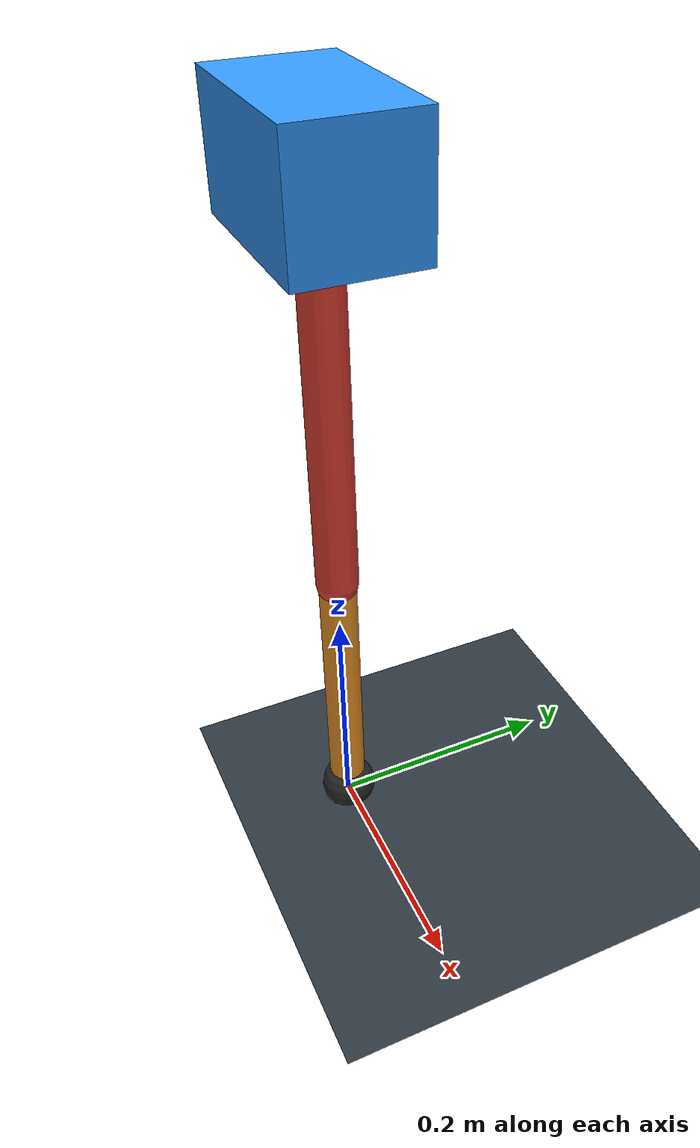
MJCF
<mujoco model="single_axis_two_bar">
  <compiler angle="radian" inertiafromgeom="true"/>
  <option timestep="0.001" integrator="implicitfast" gravity="0 0 -9.81"/>
  <default>
    <joint damping="0.08"/>
    <geom friction="1.2 0.01 0.0001" condim="3"/>
  </default>
  <worldbody>
    <geom name="floor" type="plane" size="5 5 0.1" rgba="0.18 0.22 0.25 1"/>
    <body name="carriage" pos="0 0 0.5883598262465181">
      <joint name="pole_slide" type="slide" axis="0 0 1"/>
      <geom name="payload" type="box" size="0.08 0.05 0.05" mass="2.6555728156892364" rgba="0.2 0.6 1 1"/>
      <body name="thigh" pos="0 0 0">
        <joint name="hip" type="hinge" axis="0 1 0"/>
        <geom name="thigh_link" type="capsule" fromto="0 0 0 0 0 -0.34279200674388727" size="0.018" mass="0.2442438344017499" rgba="0.9 0.25 0.2 1"/>
        <body name="shank" pos="0 0 -0.34279200674388727">
          <joint name="knee" type="hinge" axis="0 1 0"/>
          <geom name="shank_link" type="capsule" fromto="0 0 0 0 0 -0.2379913192834509" size="0.016" mass="0.16957195976728448" rgba="0.95 0.6 0.15 1"/>
          <geom name="foot" type="sphere" pos="0 0 -0.2379913192834509" size="0.025" mass="0.03" rgba="0.15 0.15 0.15 1"/>
          <site name="toe" pos="0 0 -0.2379913192834509" size="0.008"/>
        </body>
      </body>
    </body>
  </worldbody>
  <actuator>
    <motor name="hip_motor" joint="hip" ctrlrange="-26.690418361109188 26.690418361109188"/>
    <motor name="knee_motor" joint="knee" ctrlrange="-105.21393882838355 105.21393882838355"/>
  </actuator>
</mujoco>
